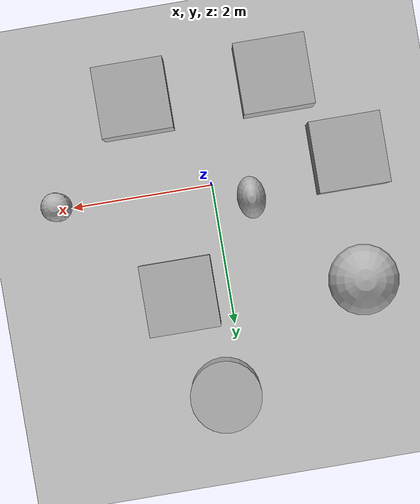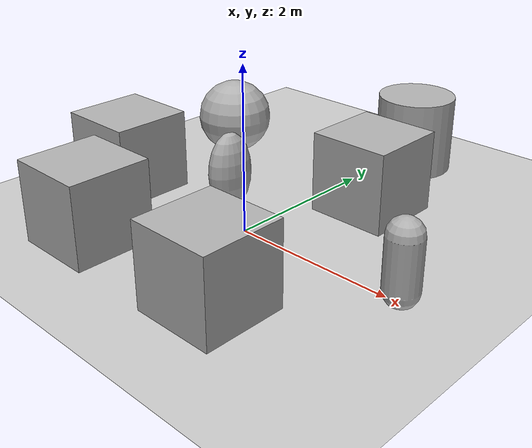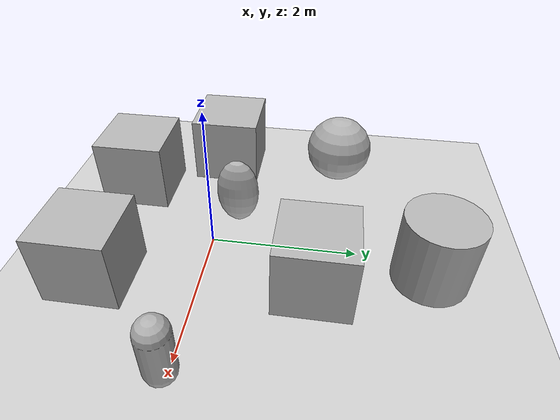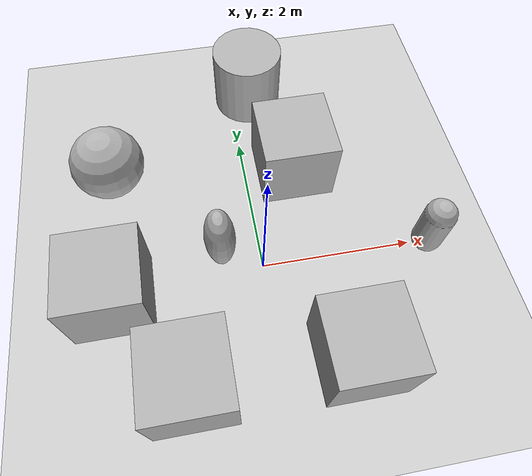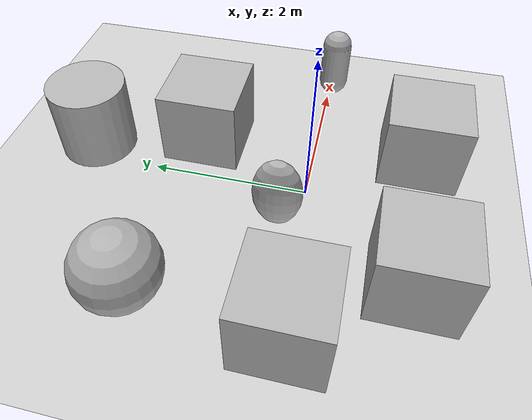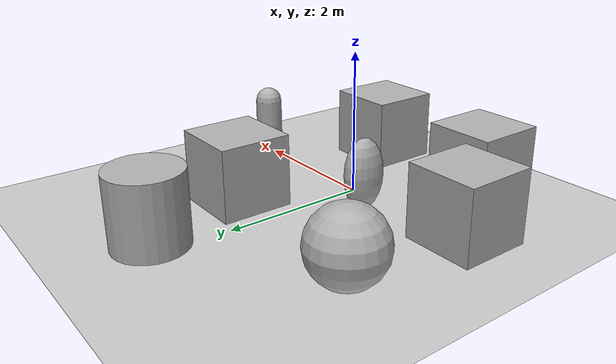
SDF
<sdf version="1.9">
 <world name="empty">
  <physics name="1ms" type="ignored">
   <max_step_size>0.001</max_step_size>
   <real_time_factor>1</real_time_factor>
   <real_time_update_rate>1000</real_time_update_rate>
  </physics>
  <plugin name="gz::sim::systems::Physics" filename="ignition-gazebo-physics-system"/>
  <plugin name="gz::sim::systems::UserCommands" filename="ignition-gazebo-user-commands-system"/>
  <plugin name="gz::sim::systems::SceneBroadcaster" filename="ignition-gazebo-scene-broadcaster-system"/>
  <plugin name="gz::sim::systems::Contact" filename="ignition-gazebo-contact-system"/>
  <plugin name="gz::sim::systems::Sensors" filename="ignition-gazebo-sensors-system"/>
  <gravity>0 0 -9.8</gravity>
  <magnetic_field>6e-06 2.3e-05 -4.2e-05</magnetic_field>
  <atmosphere type="adiabatic"/>
  <scene><ambient>0.4 0.4 0.4 1</ambient><background>0.7 0.7 0.7 1</background><shadows>true</shadows></scene>
  <model name="ground_plane">
   <static>true</static>
   <link name="link">
    <collision name="collision">
     <geometry><plane><normal>0 0 1</normal><size>100 100</size></plane></geometry>
    </collision>
    <visual name="visual">
     <geometry><plane><normal>0 0 1</normal><size>100 100</size></plane></geometry>
     <material>
      <ambient>0.8 0.8 0.8 1</ambient>
      <diffuse>0.8 0.8 0.8 1</diffuse>
      <specular>0.8 0.8 0.8 1</specular>
     </material>
    </visual>
    <inertial>
     <mass>1</mass>
     <inertia><ixx>1</ixx><ixy>0</ixy><ixz>0</ixz><iyy>1</iyy><iyz>0</iyz><izz>1</izz></inertia>
    </inertial>
   </link>
  </model>
  <model name="cylinder">
   <pose>0.285194 2.94148 0.5 0 -0 0</pose>
   <link name="cylinder_link">
    <inertial>
     <inertia>
      <ixx>0.14580000000000001</ixx>
      <ixy>0</ixy>
      <ixz>0</ixz>
      <iyy>0.14580000000000001</iyy>
      <iyz>0</iyz>
      <izz>0.125</izz>
     </inertia>
     <mass>1</mass>
    </inertial>
    <collision name="cylinder_collision">
     <geometry><cylinder><radius>0.5</radius><length>1</length></cylinder></geometry>
    </collision>
    <visual name="cylinder_visual">
     <geometry><cylinder><radius>0.5</radius><length>1</length></cylinder></geometry>
     <material>
      <ambient>0.3 0.3 0.3 1</ambient>
      <diffuse>0.7 0.7 0.7 1</diffuse>
      <specular>1 1 1 1</specular>
     </material>
    </visual>
   </link>
   <static>false</static>
  </model>
  <model name="capsule">
   <pose>2.19517 -0.042534 0.5 0 -0 0</pose>
   <link name="capsule_link">
    <inertial>
     <inertia>
      <ixx>0.074153999999999998</ixx>
      <ixy>0</ixy>
      <ixz>0</ixz>
      <iyy>0.074153999999999998</iyy>
      <iyz>0</iyz>
      <izz>0.018769000000000001</izz>
     </inertia>
     <mass>1</mass>
    </inertial>
    <collision name="capsule_collision">
     <geometry>
      <capsule><radius>0.20000000000000001</radius><length>0.59999999999999998</length></capsule>
     </geometry>
    </collision>
    <visual name="capsule_visual">
     <geometry>
      <capsule><radius>0.20000000000000001</radius><length>0.59999999999999998</length></capsule>
     </geometry>
     <material>
      <ambient>0.3 0.3 0.3 1</ambient>
      <diffuse>0.7 0.7 0.7 1</diffuse>
      <specular>1 1 1 1</specular>
     </material>
    </visual>
   </link>
   <static>false</static>
  </model>
  <model name="ellipsoid">
   <pose>-0.521964 0.271416 0.5 0 -0 0</pose>
   <link name="ellipsoid_link">
    <inertial>
     <inertia>
      <ixx>0.068000000000000005</ixx>
      <ixy>0</ixy>
      <ixz>0</ixz>
      <iyy>0.058000000000000003</iyy>
      <iyz>0</iyz>
      <izz>0.025999999999999999</izz>
     </inertia>
     <mass>1</mass>
    </inertial>
    <collision name="ellipsoid_collision">
     <geometry><ellipsoid><radii>0.2 0.3 0.5</radii></ellipsoid></geometry>
    </collision>
    <visual name="ellipsoid_visual">
     <geometry><ellipsoid><radii>0.2 0.3 0.5</radii></ellipsoid></geometry>
     <material>
      <ambient>0.3 0.3 0.3 1</ambient>
      <diffuse>0.7 0.7 0.7 1</diffuse>
      <specular>1 1 1 1</specular>
     </material>
    </visual>
   </link>
   <static>false</static>
  </model>
  <model name="sphere">
   <pose>-1.88513 1.67057 0.5 0 -0 0</pose>
   <link name="sphere_link">
    <inertial>
     <inertia>
      <ixx>0.10000000000000001</ixx>
      <ixy>0</ixy>
      <ixz>0</ixz>
      <iyy>0.10000000000000001</iyy>
      <iyz>0</iyz>
      <izz>0.10000000000000001</izz>
     </inertia>
     <mass>1</mass>
    </inertial>
    <collision name="sphere_collision"><geometry><sphere><radius>0.5</radius></sphere></geometry></collision>
    <visual name="sphere_visual">
     <geometry><sphere><radius>0.5</radius></sphere></geometry>
     <material>
      <ambient>0.3 0.3 0.3 1</ambient>
      <diffuse>0.7 0.7 0.7 1</diffuse>
      <specular>1 1 1 1</specular>
     </material>
    </visual>
   </link>
   <static>false</static>
  </model>
  <model name="box">
   <pose>-1.95655 -0.116503 0.5 0 -0 0</pose>
   <link name="box_link">
    <inertial>
     <inertia><ixx>0.16666</ixx><ixy>0</ixy><ixz>0</ixz><iyy>0.16666</iyy><iyz>0</iyz><izz>0.16666</izz></inertia>
     <mass>1</mass>
    </inertial>
    <collision name="box_collision"><geometry><box><size>1 1 1</size></box></geometry></collision>
    <visual name="box_visual">
     <geometry><box><size>1 1 1</size></box></geometry>
     <material>
      <ambient>0.3 0.3 0.3 1</ambient>
      <diffuse>0.7 0.7 0.7 1</diffuse>
      <specular>1 1 1 1</specular>
     </material>
    </visual>
   </link>
   <static>false</static>
  </model>
  <model name="box_0">
   <pose>0.689897 1.46345 0.5 0 -0 0</pose>
   <link name="box_link">
    <inertial>
     <inertia><ixx>0.16666</ixx><ixy>0</ixy><ixz>0</ixz><iyy>0.16666</iyy><iyz>0</iyz><izz>0.16666</izz></inertia>
     <mass>1</mass>
    </inertial>
    <collision name="box_collision"><geometry><box><size>1 1 1</size></box></geometry></collision>
    <visual name="box_visual">
     <geometry><box><size>1 1 1</size></box></geometry>
     <material>
      <ambient>0.3 0.3 0.3 1</ambient>
      <diffuse>0.7 0.7 0.7 1</diffuse>
      <specular>1 1 1 1</specular>
     </material>
    </visual>
   </link>
   <static>false</static>
  </model>
  <model name="box_1">
   <pose>0.886461 -1.35494 0.5 0 -0 0</pose>
   <link name="box_link">
    <inertial>
     <inertia><ixx>0.16666</ixx><ixy>0</ixy><ixz>0</ixz><iyy>0.16666</iyy><iyz>0</iyz><izz>0.16666</izz></inertia>
     <mass>1</mass>
    </inertial>
    <collision name="box_collision"><geometry><box><size>1 1 1</size></box></geometry></collision>
    <visual name="box_visual">
     <geometry><box><size>1 1 1</size></box></geometry>
     <material>
      <ambient>0.3 0.3 0.3 1</ambient>
      <diffuse>0.7 0.7 0.7 1</diffuse>
      <specular>1 1 1 1</specular>
     </material>
    </visual>
   </link>
   <static>false</static>
  </model>
  <model name="box_2">
   <pose>-1.10448 -1.35952 0.5 0 -0 0</pose>
   <link name="box_link">
    <inertial>
     <inertia><ixx>0.16666</ixx><ixy>0</ixy><ixz>0</ixz><iyy>0.16666</iyy><iyz>0</iyz><izz>0.16666</izz></inertia>
     <mass>1</mass>
    </inertial>
    <collision name="box_collision"><geometry><box><size>1 1 1</size></box></geometry></collision>
    <visual name="box_visual">
     <geometry><box><size>1 1 1</size></box></geometry>
     <material>
      <ambient>0.3 0.3 0.3 1</ambient>
      <diffuse>0.7 0.7 0.7 1</diffuse>
      <specular>1 1 1 1</specular>
     </material>
    </visual>
   </link>
   <static>false</static>
  </model>
  <light name="sun" type="directional">
   <pose>0 0 10 0 -0 0</pose>
   <intensity>1</intensity>
   <direction>-0.5 0.1 -0.9</direction>
   <diffuse>0.8 0.8 0.8 1</diffuse>
   <specular>0.2 0.2 0.2 1</specular>
   <attenuation>
    <range>1000</range>
    <linear>0.01</linear>
    <constant>0.90000000000000002</constant>
    <quadratic>0.001</quadratic>
   </attenuation>
   <spot><inner_angle>0</inner_angle><outer_angle>0</outer_angle><falloff>0</falloff></spot>
  </light>
 </world>
</sdf>
